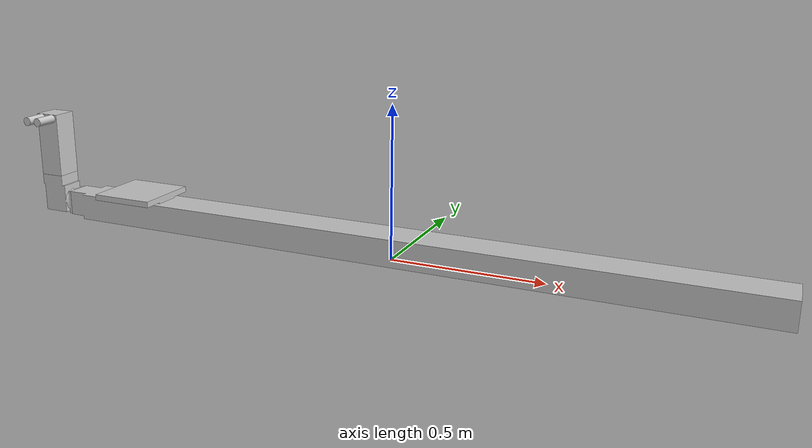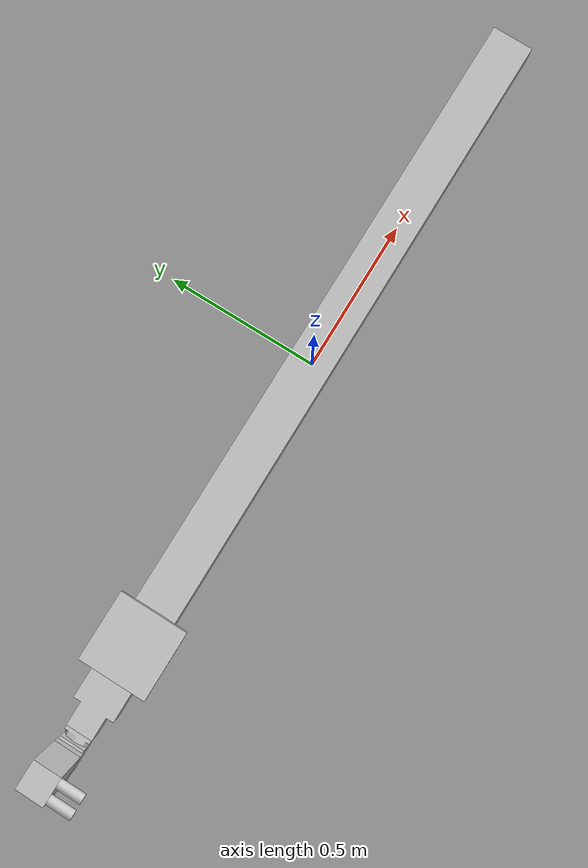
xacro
<?xml version="1.0"?>
<robot xmlns:xacro="http://www.ros.org/wiki/xacro"  name="$(arg name)">

   <!-- robot name parameter -->
  <xacro:arg name="name" default="vention_rail"/>
  <xacro:arg name="tf_prefix" default="" />
  <xacro:arg name="use_fake_hardware" default="false" />
  <xacro:arg name="ip_addr" default="192.168.7.2" />
  <xacro:arg name="port" default="9999" />
  <xacro:arg name="position_limit" default="2.0" />
  <xacro:arg name="velocity_limit" default="0.15" />
  <xacro:arg name="acceleration_limit" default="1.0" />
  <xacro:arg name="safety_com_port" default="/dev/ttyACM0" />

  <link name="world"/>

  <xacro:include filename="$(find vention_rail_description)/urdf/vention_macro.urdf.xacro"/>
  <xacro:vention_rail
    name="$(arg name)"
    tf_prefix="$(arg tf_prefix)"
    parent="world"
    use_fake_hardware="$(arg use_fake_hardware)"
    ip_addr="$(arg ip_addr)"
    port="$(arg port)"
    position_limit="$(arg position_limit)"
    velocity_limit="$(arg velocity_limit)"
    acceleration_limit="$(arg acceleration_limit)"
    safety_com_port="$(arg safety_com_port)"
  >
    <origin xyz="0 0 0" rpy="0 0 0"/>
  </xacro:vention_rail>

</robot>

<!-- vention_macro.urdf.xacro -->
<robot xmlns:xacro="http://ros.org/wiki/xacro">

   <xacro:macro name="vention_rail" params="
    name
    tf_prefix
    parent:=world
    use_fake_hardware:=false
    ip_addr:=192.168.7.2
    port:=9999
    position_limit:=2.0
    velocity_limit:=0.15
    acceleration_limit:=1.0
    safety_com_port:=/dev/ttyACM0
    generate_ros2_control_tag=true
    *origin">

    <joint name="${tf_prefix}vention_rail_base_joint" type="fixed">
      <parent link="${parent}"/>
      <child link="${tf_prefix}vention_rail_base_link"/>
      <xacro:insert_block name="origin"/>
    </joint>

    <link name="${tf_prefix}vention_rail_base_link">
      <visual>
        <origin xyz="0 0 0.045" rpy="0 0 0"/>
        <geometry>
          <mesh filename="package://vention_rail_description/meshes/visual/rail_des_live_body.dae"/>
        </geometry>
      </visual>
      <collision>
        <origin xyz="-0.0375 0 0.045" rpy="0 0 0"/>
        <geometry>
          <box size="2.4375 0.1350 0.0900"/>
        </geometry>
      </collision>
      <inertial>
        <mass value="38.47"/>
        <inertia ixx="0.46604111" ixy="0.0" ixz="0.0" iyy="0.46480515" iyz="-0.002668667" izz="0.1561"/>
      </inertial>
    </link>

    <link name="${tf_prefix}vention_rail_carriage">
      <visual>
        <geometry>
          <mesh filename="package://vention_rail_description/meshes/visual/rail_des_live_carriage.dae"/>
        </geometry>
      </visual>
      <collision>
        <origin xyz="0 0 0.00825" rpy="0 0 0"/>
        <geometry>
          <box size="0.223 0.223 0.0205000"/>
        </geometry>
      </collision>
      <inertial>
        <mass value="2.937"/>
        <inertia ixx="0.0125" ixy="0.0" ixz="0.0" iyy="0.0287" iyz="0.0" izz="0.0199"/>
      </inertial>
    </link>

    <joint name="${tf_prefix}vention_rail_base_to_carriage" type="prismatic">
      <origin xyz="-0.96975 0 0.09600" rpy="0 0 0"/>
      <parent link="${tf_prefix}vention_rail_base_link"/>
      <child link="${tf_prefix}vention_rail_carriage"/>
      <limit lower="0" upper="${position_limit}" effort="1000" velocity="${velocity_limit}"/>
    </joint>

    <link name="${tf_prefix}vention_rail_gearbox">
      <visual>
        <geometry>
          <mesh filename="package://vention_rail_description/meshes/visual/rail_des_gearbox.dae"/>
        </geometry>
      </visual>
      <collision>
        <origin xyz="0.013 0 0.017875" rpy="0 0 0"/>
        <geometry>
          <box size="0.12310 0.08600 0.13735"/>
        </geometry>
      </collision>
    </link>

    <joint name="${tf_prefix}vention_rail_base_to_gearbox" type="fixed">
      <origin xyz="-1.3308 0 0.05455" rpy="0 0 0"/>
      <parent link="${tf_prefix}vention_rail_base_link"/>
      <child link="${tf_prefix}vention_rail_gearbox"/>
    </joint>

    <link name="${tf_prefix}vention_rail_motor">
      <visual>
        <geometry>
          <box size="0.086 0.086 0.226"/>
        </geometry>
        <material name="${tf_prefix}vention_rail_motor">
          <color rgba="0.8 0.8 0.8 1"/>
        </material>
      </visual>
      <collision>
        <geometry>
          <box size="0.086 0.086 0.226"/>
        </geometry>
      </collision>
    </link>

    <joint name="${tf_prefix}vention_rail_gearbox_to_motor" type="fixed">
      <origin xyz="-0.00555 0 0.19955" rpy="0 0 0"/>
      <parent link="${tf_prefix}vention_rail_gearbox"/>
      <child link="${tf_prefix}vention_rail_motor"/>
    </joint>

    <link name="${tf_prefix}vention_rail_cable_0">
      <visual>
        <geometry>
          <cylinder radius="0.015" length="0.075"/>
        </geometry>
        <material name="${tf_prefix}vention_rail_cable_0">
          <color rgba="0.8 0.8 0.8 1"/>
        </material>
      </visual>
    </link>

    <joint name="${tf_prefix}vention_motor_to_cable_0" type="fixed">
      <origin xyz="0.0231 -0.0805 0.098" rpy="${radians(90)} 0 0"/>
      <parent link="${tf_prefix}vention_rail_motor"/>
      <child link="${tf_prefix}vention_rail_cable_0"/>
    </joint>

    <link name="${tf_prefix}vention_rail_cable_1">
      <visual>
        <geometry>
          <cylinder radius="0.015" length="0.075"/>
        </geometry>
        <material name="${tf_prefix}vention_rail_cable_1s">
          <color rgba="0.8 0.8 0.8 1"/>
        </material>
      </visual>
    </link>

    <joint name="${tf_prefix}vention_motor_to_cable_1" type="fixed">
      <origin xyz="-0.0231 -0.0805 0.098" rpy="${radians(90)} 0 0"/>
      <parent link="${tf_prefix}vention_rail_motor"/>
      <child link="${tf_prefix}vention_rail_cable_1"/>
    </joint>

    <link name="${tf_prefix}vention_rail_cable_collision">
      <collision>
        <geometry>
          <box size="0.0762 0.2286 0.0762"/>
        </geometry>
      </collision>
    </link>

    <joint name="${tf_prefix}vention_motor_to_cable_collision" type="fixed">
      <origin xyz="0 -0.1573 0.0749" rpy="0 0 0"/>
      <parent link="${tf_prefix}vention_rail_motor"/>
      <child link="${tf_prefix}vention_rail_cable_collision"/>
    </joint>

    <xacro:if value="${generate_ros2_control_tag}">
      <xacro:include filename="$(find vention_rail_description)/urdf/vention_rail.ros2_control.xacro" />
      <xacro:vention_rail_ros2_control
        name="${name}"
        use_fake_hardware="${use_fake_hardware}"
        tf_prefix="${tf_prefix}"
        ip_addr="${ip_addr}"
        port="${port}"
        position_limit="${position_limit}"
        velocity_limit="${velocity_limit}"
        acceleration_limit="${acceleration_limit}"
        safety_com_port="${safety_com_port}"
      />
    </xacro:if>
  </xacro:macro>

</robot>
